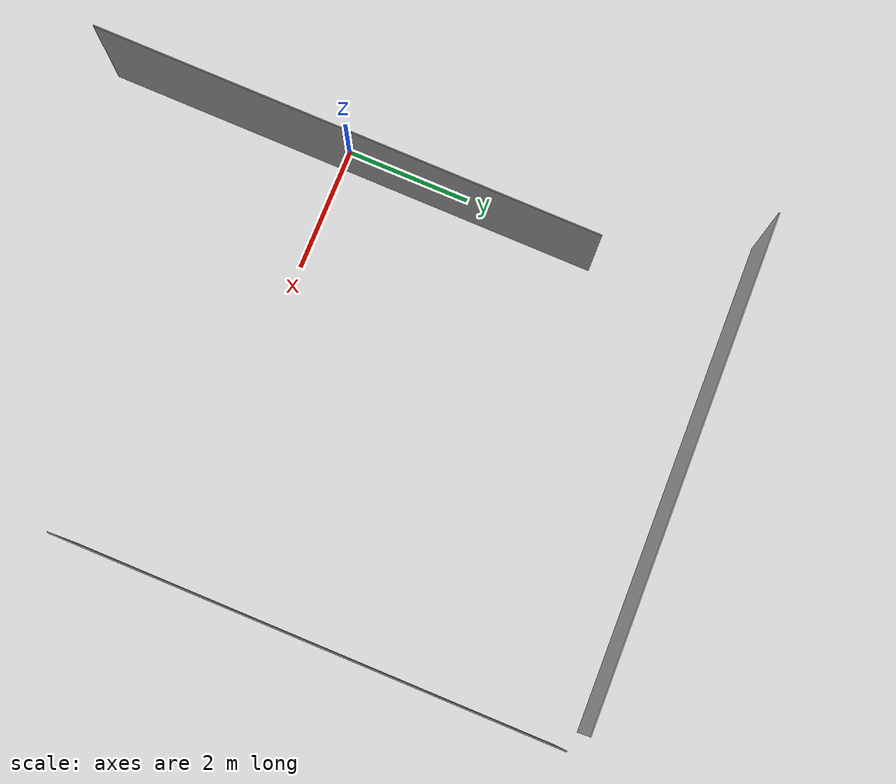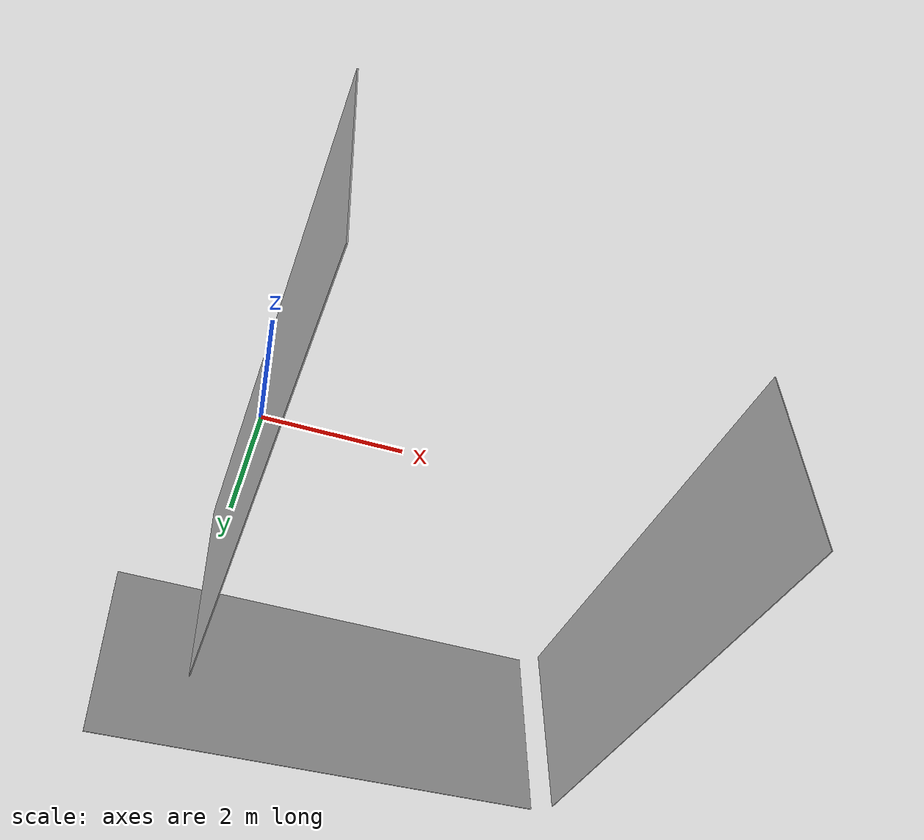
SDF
<?xml version='1.0'?>
<sdf version='1.7'>
  <model name='unit_box'>
    <link name='link'>
      <inertial>
        <mass>0.49981</mass>
        <inertia>
          <ixx>3.38665</ixx>
          <ixy>0</ixy>
          <ixz>0</ixz>
          <iyy>0.460125</iyy>
          <iyz>0</iyz>
          <izz>2.92655</izz>
        </inertia>
        <pose>0 0 0 0 -0 0</pose>
      </inertial>
      <self_collide>0</self_collide>
      <enable_wind>0</enable_wind>
      <kinematic>0</kinematic>
      <pose>0 0 0 0 -0 0</pose>
      <visual name='visual'>
        <geometry>
          <box>
            <size>0.018065 8.38234 3.32368</size>
          </box>
        </geometry>
        <material>
          <script>
            <name>Gazebo/Grey</name>
            <uri>file://media/materials/scripts/gazebo.material</uri>
          </script>
          <shader type='pixel'/>
        </material>
        <pose>0 0 0 0 -0 0</pose>
        <transparency>0</transparency>
        <cast_shadows>1</cast_shadows>
      </visual>
      <collision name='collision'>
        <laser_retro>0</laser_retro>
        <max_contacts>10</max_contacts>
        <pose>0 0 0 0 -0 0</pose>
        <geometry>
          <box>
            <size>0.018065 8.38234 3.32368</size>
          </box>
        </geometry>
        <surface>
          <friction>
            <ode>
              <mu>1</mu>
              <mu2>1</mu2>
              <fdir1>0 0 0</fdir1>
              <slip1>0</slip1>
              <slip2>0</slip2>
            </ode>
            <torsional>
              <coefficient>1</coefficient>
              <patch_radius>0</patch_radius>
              <surface_radius>0</surface_radius>
              <use_patch_radius>1</use_patch_radius>
              <ode>
                <slip>0</slip>
              </ode>
            </torsional>
          </friction>
          <bounce>
            <restitution_coefficient>0</restitution_coefficient>
            <threshold>1e+06</threshold>
          </bounce>
          <contact>
            <collide_without_contact>0</collide_without_contact>
            <collide_without_contact_bitmask>1</collide_without_contact_bitmask>
            <collide_bitmask>1</collide_bitmask>
            <ode>
              <soft_cfm>0</soft_cfm>
              <soft_erp>0.2</soft_erp>
              <kp>1e+13</kp>
              <kd>1</kd>
              <max_vel>0.01</max_vel>
              <min_depth>0</min_depth>
            </ode>
            <bullet>
              <split_impulse>1</split_impulse>
              <split_impulse_penetration_threshold>-0.01</split_impulse_penetration_threshold>
              <soft_cfm>0</soft_cfm>
              <soft_erp>0.2</soft_erp>
              <kp>1e+13</kp>
              <kd>1</kd>
            </bullet>
          </contact>
        </surface>
      </collision>
    </link>
    <link name='link_clone'>
      <inertial>
        <mass>0.49981</mass>
        <inertia>
          <ixx>3.38665</ixx>
          <ixy>0</ixy>
          <ixz>0</ixz>
          <iyy>0.460125</iyy>
          <iyz>0</iyz>
          <izz>2.92655</izz>
        </inertia>
        <pose>0 0 0 0 -0 0</pose>
      </inertial>
      <self_collide>0</self_collide>
      <enable_wind>0</enable_wind>
      <kinematic>0</kinematic>
      <pose>7.34326 2.45282 -2.4e-05 -1e-05 0 0</pose>
      <visual name='visual'>
        <geometry>
          <box>
            <size>0.018065 8.38234 3.32368</size>
          </box>
        </geometry>
        <material>
          <script>
            <name>Gazebo/Grey</name>
            <uri>file://media/materials/scripts/gazebo.material</uri>
          </script>
          <shader type='pixel'/>
        </material>
        <pose>0 0 0 0 -0 0</pose>
        <transparency>0</transparency>
        <cast_shadows>1</cast_shadows>
      </visual>
      <collision name='collision'>
        <laser_retro>0</laser_retro>
        <max_contacts>10</max_contacts>
        <pose>0 0 0 0 -0 0</pose>
        <geometry>
          <box>
            <size>0.018065 8.38234 3.32368</size>
          </box>
        </geometry>
        <surface>
          <friction>
            <ode>
              <mu>1</mu>
              <mu2>1</mu2>
              <fdir1>0 0 0</fdir1>
              <slip1>0</slip1>
              <slip2>0</slip2>
            </ode>
            <torsional>
              <coefficient>1</coefficient>
              <patch_radius>0</patch_radius>
              <surface_radius>0</surface_radius>
              <use_patch_radius>1</use_patch_radius>
              <ode>
                <slip>0</slip>
              </ode>
            </torsional>
          </friction>
          <bounce>
            <restitution_coefficient>0</restitution_coefficient>
            <threshold>1e+06</threshold>
          </bounce>
          <contact>
            <collide_without_contact>0</collide_without_contact>
            <collide_without_contact_bitmask>1</collide_without_contact_bitmask>
            <collide_bitmask>1</collide_bitmask>
            <ode>
              <soft_cfm>0</soft_cfm>
              <soft_erp>0.2</soft_erp>
              <kp>1e+13</kp>
              <kd>1</kd>
              <max_vel>0.01</max_vel>
              <min_depth>0</min_depth>
            </ode>
            <bullet>
              <split_impulse>1</split_impulse>
              <split_impulse_penetration_threshold>-0.01</split_impulse_penetration_threshold>
              <soft_cfm>0</soft_cfm>
              <soft_erp>0.2</soft_erp>
              <kp>1e+13</kp>
              <kd>1</kd>
            </bullet>
          </contact>
        </surface>
      </collision>
    </link>
    <link name='link_clone_0'>
      <inertial>
        <mass>0.49981</mass>
        <inertia>
          <ixx>3.38665</ixx>
          <ixy>0</ixy>
          <ixz>0</ixz>
          <iyy>0.460125</iyy>
          <iyz>0</iyz>
          <izz>2.92655</izz>
        </inertia>
        <pose>0 0 0 0 -0 0</pose>
      </inertial>
      <self_collide>0</self_collide>
      <enable_wind>0</enable_wind>
      <kinematic>0</kinematic>
      <pose>2.822 6.70791 -6.6e-05 0 -1e-05 -1.52797</pose>
      <gravity>1</gravity>
      <visual name='visual'>
        <geometry>
          <box>
            <size>0.018065 8.38234 3.32368</size>
          </box>
        </geometry>
        <material>
          <script>
            <name>Gazebo/Grey</name>
            <uri>file://media/materials/scripts/gazebo.material</uri>
          </script>
          <shader type='pixel'>
            <normal_map>__default__</normal_map>
          </shader>
        </material>
        <pose>0 0 0 0 -0 0</pose>
        <transparency>0</transparency>
        <cast_shadows>1</cast_shadows>
      </visual>
      <collision name='collision'>
        <laser_retro>0</laser_retro>
        <max_contacts>10</max_contacts>
        <pose>0 0 0 0 -0 0</pose>
        <geometry>
          <box>
            <size>0.018065 8.38234 3.32368</size>
          </box>
        </geometry>
        <surface>
          <friction>
            <ode>
              <mu>1</mu>
              <mu2>1</mu2>
              <fdir1>0 0 0</fdir1>
              <slip1>0</slip1>
              <slip2>0</slip2>
            </ode>
            <torsional>
              <coefficient>1</coefficient>
              <patch_radius>0</patch_radius>
              <surface_radius>0</surface_radius>
              <use_patch_radius>1</use_patch_radius>
              <ode>
                <slip>0</slip>
              </ode>
            </torsional>
          </friction>
          <bounce>
            <restitution_coefficient>0</restitution_coefficient>
            <threshold>1e+06</threshold>
          </bounce>
          <contact>
            <collide_without_contact>0</collide_without_contact>
            <collide_without_contact_bitmask>1</collide_without_contact_bitmask>
            <collide_bitmask>1</collide_bitmask>
            <ode>
              <soft_cfm>0</soft_cfm>
              <soft_erp>0.2</soft_erp>
              <kp>1e+13</kp>
              <kd>1</kd>
              <max_vel>0.01</max_vel>
              <min_depth>0</min_depth>
            </ode>
            <bullet>
              <split_impulse>1</split_impulse>
              <split_impulse_penetration_threshold>-0.01</split_impulse_penetration_threshold>
              <soft_cfm>0</soft_cfm>
              <soft_erp>0.2</soft_erp>
              <kp>1e+13</kp>
              <kd>1</kd>
            </bullet>
          </contact>
        </surface>
      </collision>
    </link>
    <static>0</static>
    <allow_auto_disable>1</allow_auto_disable>
  </model>
</sdf>
